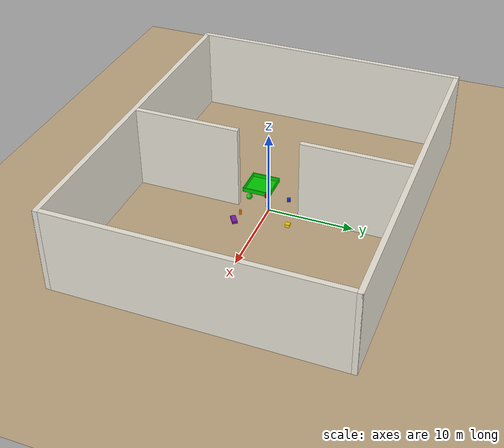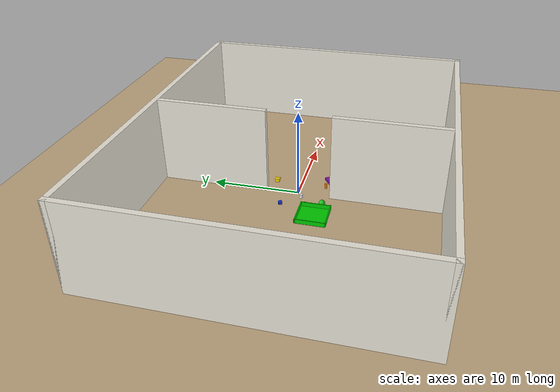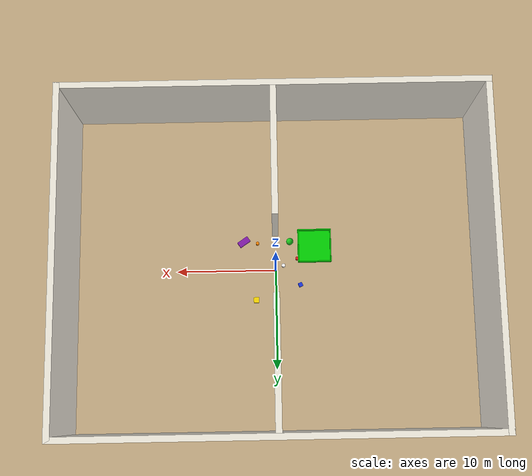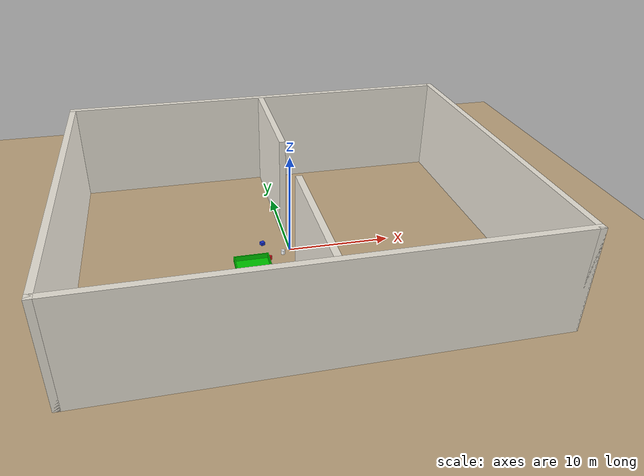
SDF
<sdf version="1.7">
 <world name="home_world">
  <physics name="1ms" type="ignored">
   <max_step_size>0.001</max_step_size>
   <real_time_factor>1.0</real_time_factor>
   <real_time_update_rate>1000</real_time_update_rate>
  </physics>
  <gravity>0 0 -9.81</gravity>
  <magnetic_field>6e-06 2.3e-05 -4.2e-05</magnetic_field>
  <atmosphere type="adiabatic"/>
  <plugin filename="gz-sim-physics-system" name="gz::sim::systems::Physics"/>
  <plugin filename="gz-sim-user-commands-system" name="gz::sim::systems::UserCommands"/>
  <plugin filename="gz-sim-scene-broadcaster-system" name="gz::sim::systems::SceneBroadcaster"/>
  <plugin filename="gz-sim-sensors-system" name="gz::sim::systems::Sensors">
   <render_engine>ogre2</render_engine>
  </plugin>
  <plugin filename="gz-sim-imu-system" name="gz::sim::systems::Imu"/>
  <model name="ground_plane">
   <static>true</static>
   <link name="link">
    <collision name="collision">
     <geometry><plane><normal>0 0 1</normal><size>80 80</size></plane></geometry>
     <surface>
      <friction>
       <ode><mu>0.8</mu><mu2>0.8</mu2><fdir1>1 0 0</fdir1><slip1>0.0</slip1><slip2>0.0</slip2></ode>
      </friction>
      <torsional>
       <coefficient>0.5</coefficient>
       <use_patch_radius>true</use_patch_radius>
       <patch_radius>0.1</patch_radius>
      </torsional>
      <contact>
       <ode>
        <soft_cfm>0</soft_cfm>
        <soft_erp>0.2</soft_erp>
        <kp>1e+13</kp>
        <kd>1</kd>
        <max_vel>0.01</max_vel>
        <min_depth>0.001</min_depth>
       </ode>
      </contact>
     </surface>
    </collision>
    <visual name="visual">
     <cast_shadows>false</cast_shadows>
     <geometry><plane><normal>0 0 1</normal><size>80 80</size></plane></geometry>
     <material>
      <ambient>0.75 0.65 0.5 1</ambient>
      <diffuse>0.75 0.65 0.5 1</diffuse>
      <specular>0.1 0.1 0.1 1</specular>
     </material>
    </visual>
   </link>
  </model>
  <model name="wall_west">
   <static>true</static>
   <pose>-20.3 0 5 0 0 0</pose>
   <link name="link">
    <collision name="col"><geometry><box><size>0.6 33.2 10</size></box></geometry></collision>
    <visual name="vis">
     <geometry><box><size>0.6 33.2 10</size></box></geometry>
     <material><ambient>0.92 0.9 0.85 1</ambient><diffuse>0.92 0.9 0.85 1</diffuse></material>
    </visual>
   </link>
  </model>
  <model name="wall_east">
   <static>true</static>
   <pose>20.3 0 5 0 0 0</pose>
   <link name="link">
    <collision name="col"><geometry><box><size>0.6 33.2 10</size></box></geometry></collision>
    <visual name="vis">
     <geometry><box><size>0.6 33.2 10</size></box></geometry>
     <material><ambient>0.92 0.9 0.85 1</ambient><diffuse>0.92 0.9 0.85 1</diffuse></material>
    </visual>
   </link>
  </model>
  <model name="wall_south">
   <static>true</static>
   <pose>0 -16.3 5 0 0 0</pose>
   <link name="link">
    <collision name="col"><geometry><box><size>41.2 0.6 10</size></box></geometry></collision>
    <visual name="vis">
     <geometry><box><size>41.2 0.6 10</size></box></geometry>
     <material><ambient>0.92 0.9 0.85 1</ambient><diffuse>0.92 0.9 0.85 1</diffuse></material>
    </visual>
   </link>
  </model>
  <model name="wall_north">
   <static>true</static>
   <pose>0 16.3 5 0 0 0</pose>
   <link name="link">
    <collision name="col"><geometry><box><size>41.2 0.6 10</size></box></geometry></collision>
    <visual name="vis">
     <geometry><box><size>41.2 0.6 10</size></box></geometry>
     <material><ambient>0.92 0.9 0.85 1</ambient><diffuse>0.92 0.9 0.85 1</diffuse></material>
    </visual>
   </link>
  </model>
  <model name="wall_shared_south">
   <static>true</static>
   <pose>0 -9.8 5 0 0 0</pose>
   <link name="link">
    <collision name="col"><geometry><box><size>0.6 12.4 10</size></box></geometry></collision>
    <visual name="vis">
     <geometry><box><size>0.6 12.4 10</size></box></geometry>
     <material><ambient>0.92 0.9 0.85 1</ambient><diffuse>0.92 0.9 0.85 1</diffuse></material>
    </visual>
   </link>
  </model>
  <model name="wall_shared_north">
   <static>true</static>
   <pose>0 9.8 5 0 0 0</pose>
   <link name="link">
    <collision name="col"><geometry><box><size>0.6 12.4 10</size></box></geometry></collision>
    <visual name="vis">
     <geometry><box><size>0.6 12.4 10</size></box></geometry>
     <material><ambient>0.92 0.9 0.85 1</ambient><diffuse>0.92 0.9 0.85 1</diffuse></material>
    </visual>
   </link>
  </model>
  <model name="collection_bin">
   <static>true</static>
   <pose>-4.0 -2.5 0 0 0 0</pose>
   <link name="base">
    <collision name="base_col"><geometry><box><size>3.4 3.4 0.02</size></box></geometry></collision>
    <visual name="base_vis">
     <geometry><box><size>3.4 3.4 0.02</size></box></geometry>
     <material><ambient>0.0 0.5 0.0 1</ambient><diffuse>0.0 0.8 0.0 1</diffuse></material>
    </visual>
   </link>
   <link name="wall_north">
    <pose>0 1.64 0.25 0 0 0</pose>
    <collision name="wall_north_col"><geometry><box><size>3.4 0.1 0.5</size></box></geometry></collision>
    <visual name="wall_north_vis">
     <geometry><box><size>3.4 0.1 0.5</size></box></geometry>
     <material><ambient>0.0 0.5 0.0 1</ambient><diffuse>0.0 0.8 0.0 1</diffuse></material>
    </visual>
   </link>
   <link name="wall_south">
    <pose>0 -1.64 0.25 0 0 0</pose>
    <collision name="wall_south_col"><geometry><box><size>3.4 0.1 0.5</size></box></geometry></collision>
    <visual name="wall_south_vis">
     <geometry><box><size>3.4 0.1 0.5</size></box></geometry>
     <material><ambient>0.0 0.5 0.0 1</ambient><diffuse>0.0 0.8 0.0 1</diffuse></material>
    </visual>
   </link>
   <link name="wall_east">
    <pose>1.64 0 0.25 0 0 0</pose>
    <collision name="wall_east_col"><geometry><box><size>0.1 3.4 0.5</size></box></geometry></collision>
    <visual name="wall_east_vis">
     <geometry><box><size>0.1 3.4 0.5</size></box></geometry>
     <material><ambient>0.0 0.5 0.0 1</ambient><diffuse>0.0 0.8 0.0 1</diffuse></material>
    </visual>
   </link>
   <link name="wall_west">
    <pose>-1.64 0 0.25 0 0 0</pose>
    <collision name="wall_west_col"><geometry><box><size>0.1 3.4 0.5</size></box></geometry></collision>
    <visual name="wall_west_vis">
     <geometry><box><size>0.1 3.4 0.5</size></box></geometry>
     <material><ambient>0.0 0.5 0.0 1</ambient><diffuse>0.0 0.8 0.0 1</diffuse></material>
    </visual>
   </link>
  </model>
  <model name="obj_can_red">
   <pose>-2.2 -1.2 0.1 0 0 0</pose>
   <link name="link">
    <inertial>
     <mass>0.12</mass>
     <inertia><ixx>0.00012</ixx><ixy>0</ixy><ixz>0</ixz><iyy>0.00012</iyy><iyz>0</iyz><izz>0.00006</izz></inertia>
    </inertial>
    <collision name="col">
     <geometry><cylinder><radius>0.16</radius><length>0.52</length></cylinder></geometry>
     <surface><friction><ode><mu>0.6</mu><mu2>0.6</mu2></ode></friction></surface>
    </collision>
    <visual name="vis">
     <geometry><cylinder><radius>0.16</radius><length>0.52</length></cylinder></geometry>
     <material><ambient>0.85 0.1 0.1 1</ambient><diffuse>0.85 0.1 0.1 1</diffuse></material>
    </visual>
   </link>
  </model>
  <model name="obj_block_blue">
   <pose>-2.5 1.5 0.06 0 0 0.4</pose>
   <link name="link">
    <inertial>
     <mass>0.15</mass>
     <inertia><ixx>0.00012</ixx><ixy>0</ixy><ixz>0</ixz><iyy>0.00012</iyy><iyz>0</iyz><izz>0.00012</izz></inertia>
    </inertial>
    <collision name="col">
     <geometry><box><size>0.4 0.4 0.4</size></box></geometry>
     <surface><friction><ode><mu>0.65</mu><mu2>0.65</mu2></ode></friction></surface>
    </collision>
    <visual name="vis">
     <geometry><box><size>0.4 0.4 0.4</size></box></geometry>
     <material><ambient>0.1 0.2 0.85 1</ambient><diffuse>0.1 0.2 0.85 1</diffuse></material>
    </visual>
   </link>
  </model>
  <model name="obj_ball_green">
   <pose>-1.5 -3.0 0.09 0 0 0</pose>
   <link name="link">
    <inertial>
     <mass>0.08</mass>
     <inertia><ixx>0.00006</ixx><ixy>0</ixy><ixz>0</ixz><iyy>0.00006</iyy><iyz>0</iyz><izz>0.00006</izz></inertia>
    </inertial>
    <collision name="col">
     <geometry><sphere><radius>0.36</radius></sphere></geometry>
     <surface><friction><ode><mu>0.45</mu><mu2>0.45</mu2></ode></friction></surface>
    </collision>
    <visual name="vis">
     <geometry><sphere><radius>0.36</radius></sphere></geometry>
     <material><ambient>0.1 0.75 0.1 1</ambient><diffuse>0.1 0.75 0.1 1</diffuse></material>
    </visual>
   </link>
  </model>
  <model name="obj_cup_white">
   <pose>-0.8 -0.5 0.09 0 0 0</pose>
   <link name="link">
    <inertial>
     <mass>0.09</mass>
     <inertia><ixx>0.00008</ixx><ixy>0</ixy><ixz>0</ixz><iyy>0.00008</iyy><iyz>0</iyz><izz>0.00004</izz></inertia>
    </inertial>
    <collision name="col">
     <geometry><cylinder><radius>0.18</radius><length>0.6</length></cylinder></geometry>
     <surface><friction><ode><mu>0.55</mu><mu2>0.55</mu2></ode></friction></surface>
    </collision>
    <visual name="vis">
     <geometry><cylinder><radius>0.18</radius><length>0.6</length></cylinder></geometry>
     <material><ambient>0.95 0.95 0.95 1</ambient><diffuse>0.95 0.95 0.95 1</diffuse></material>
    </visual>
   </link>
  </model>
  <model name="obj_bottle_orange">
   <pose>1.8 -2.8 0.12 0 0 0</pose>
   <link name="link">
    <inertial>
     <mass>0.13</mass>
     <inertia><ixx>0.00013</ixx><ixy>0</ixy><ixz>0</ixz><iyy>0.00013</iyy><iyz>0</iyz><izz>0.00004</izz></inertia>
    </inertial>
    <collision name="col">
     <geometry><cylinder><radius>0.152</radius><length>0.8</length></cylinder></geometry>
     <surface><friction><ode><mu>0.6</mu><mu2>0.6</mu2></ode></friction></surface>
    </collision>
    <visual name="vis">
     <geometry><cylinder><radius>0.152</radius><length>0.8</length></cylinder></geometry>
     <material><ambient>0.95 0.5 0.0 1</ambient><diffuse>0.95 0.5 0.0 1</diffuse></material>
    </visual>
   </link>
  </model>
  <model name="obj_shoebox_purple">
   <pose>3.2 -3.0 0.06 0 0 0.6</pose>
   <link name="link">
    <inertial>
     <mass>0.22</mass>
     <inertia><ixx>0.00025</ixx><ixy>0</ixy><ixz>0</ixz><iyy>0.00035</iyy><iyz>0</iyz><izz>0.00045</izz></inertia>
    </inertial>
    <collision name="col">
     <geometry><box><size>1.2 0.6 0.4</size></box></geometry>
     <surface><friction><ode><mu>0.65</mu><mu2>0.65</mu2></ode></friction></surface>
    </collision>
    <visual name="vis">
     <geometry><box><size>1.2 0.6 0.4</size></box></geometry>
     <material><ambient>0.5 0.1 0.65 1</ambient><diffuse>0.5 0.1 0.65 1</diffuse></material>
    </visual>
   </link>
  </model>
  <model name="obj_box_yellow">
   <pose>2.0 3.0 0.07 0 0 0</pose>
   <link name="link">
    <inertial>
     <mass>0.1</mass>
     <inertia><ixx>0.00010</ixx><ixy>0</ixy><ixz>0</ixz><iyy>0.00010</iyy><iyz>0</iyz><izz>0.00010</izz></inertia>
    </inertial>
    <collision name="col">
     <geometry><box><size>0.52 0.52 0.52</size></box></geometry>
     <surface><friction><ode><mu>0.6</mu><mu2>0.6</mu2></ode></friction></surface>
    </collision>
    <visual name="vis">
     <geometry><box><size>0.52 0.52 0.52</size></box></geometry>
     <material><ambient>0.95 0.82 0.0 1</ambient><diffuse>0.95 0.82 0.0 1</diffuse></material>
    </visual>
   </link>
  </model>
 </world>
</sdf>
